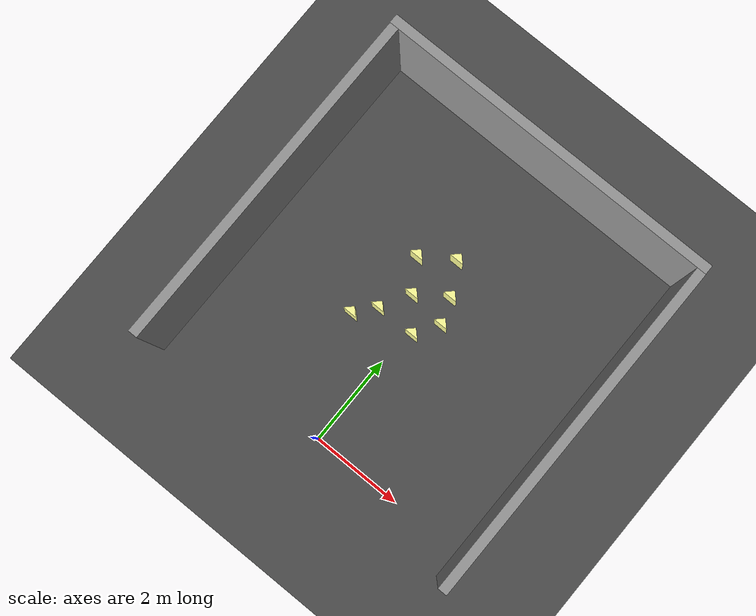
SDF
<sdf version="1.6">
 <world name="default">
  <light name="sun" type="directional">
   <pose>0 0 10 0 -0 0</pose>
   <diffuse>0.8 0.8 0.8 1</diffuse>
   <specular>0.2 0.2 0.2 1</specular>
   <attenuation>
    <range>1000</range>
    <constant>0.9</constant>
    <linear>0.01</linear>
    <quadratic>0.001</quadratic>
   </attenuation>
   <direction>-0.5 0.1 -0.9</direction>
  </light>
  <model name="ground_plane">
   <static>1</static>
   <link name="link">
    <collision name="collision">
     <geometry><plane><normal>0 0 1</normal><size>100 100</size></plane></geometry>
     <surface><friction><ode><mu>100</mu><mu2>50</mu2></ode></friction></surface>
    </collision>
    <visual name="visual">
     <cast_shadows>0</cast_shadows>
     <geometry><plane><normal>0 0 1</normal><size>100 100</size></plane></geometry>
     <material>
      <script><uri>file://media/materials/scripts/gazebo.material</uri><name>Gazebo/Grey</name></script>
     </material>
    </visual>
   </link>
  </model>
  <gravity>0 0 -9.8</gravity>
  <magnetic_field>6e-06 2.3e-05 -4.2e-05</magnetic_field>
  <atmosphere type="adiabatic"/>
  <physics name="default_physics" default="0" type="ode">
   <max_step_size>0.001</max_step_size>
   <real_time_factor>1</real_time_factor>
   <real_time_update_rate>1000</real_time_update_rate>
  </physics>
  <scene><ambient>0.4 0.4 0.4 1</ambient><background>0.7 0.7 0.7 1</background><shadows>1</shadows></scene>
  <audio><device>default</device></audio>
  <spherical_coordinates>
   <surface_model>EARTH_WGS84</surface_model>
   <latitude_deg>0</latitude_deg>
   <longitude_deg>0</longitude_deg>
   <elevation>0</elevation>
   <heading_deg>0</heading_deg>
  </spherical_coordinates>
  <model name="asphalt_plane">
   <static>1</static>
   <link name="link">
    <collision name="collision"><geometry><box><size>127.482 123.52 0.1</size></box></geometry></collision>
    <visual name="visual">
     <cast_shadows>0</cast_shadows>
     <geometry><box><size>127.482 123.52 0.1</size></box></geometry>
     <material>
      <script>
       <uri>model://asphalt_plane/materials/scripts</uri>
       <uri>model://asphalt_plane/materials/textures</uri>
       <name>vrc/asphalt</name>
      </script>
     </material>
    </visual>
   </link>
   <pose>-0.028318 3.39553 -0.044517 0 -0 0</pose>
  </model>
  <model name="grey_wall">
   <static>1</static>
   <link name="link">
    <pose>0 0 1.4 0 -0 0</pose>
    <collision name="collision"><geometry><box><size>7.5 0.2 2.8</size></box></geometry></collision>
    <visual name="visual">
     <cast_shadows>0</cast_shadows>
     <geometry><box><size>7.5 0.2 2.8</size></box></geometry>
     <material>
      <script>
       <uri>model://grey_wall/materials/scripts</uri>
       <uri>model://grey_wall/materials/textures</uri>
       <name>vrc/grey_wall</name>
      </script>
     </material>
    </visual>
   </link>
   <pose>0 7 0 0 -0 0</pose>
  </model>
  <model name="grey_wall_0">
   <static>1</static>
   <link name="link">
    <pose>0 0 1.4 0 -0 0</pose>
    <collision name="collision"><geometry><box><size>7.5 0.2 2.8</size></box></geometry></collision>
    <visual name="visual">
     <cast_shadows>0</cast_shadows>
     <geometry><box><size>7.5 0.2 2.8</size></box></geometry>
     <material>
      <script>
       <uri>model://grey_wall/materials/scripts</uri>
       <uri>model://grey_wall/materials/textures</uri>
       <name>vrc/grey_wall</name>
      </script>
     </material>
    </visual>
   </link>
   <pose>-3.65 3.15 0 0 -0 1.56904</pose>
  </model>
  <model name="grey_wall_0_clone">
   <static>1</static>
   <link name="link">
    <pose>0 0 1.4 0 -0 0</pose>
    <collision name="collision"><geometry><box><size>7.5 0.2 2.8</size></box></geometry></collision>
    <visual name="visual">
     <cast_shadows>0</cast_shadows>
     <geometry><box><size>7.5 0.2 2.8</size></box></geometry>
     <material>
      <script>
       <uri>model://grey_wall/materials/scripts</uri>
       <uri>model://grey_wall/materials/textures</uri>
       <name>vrc/grey_wall</name>
      </script>
     </material>
    </visual>
   </link>
   <pose>3.65 3.15 0 0 -0 1.56904</pose>
  </model>
  <light name="user_point_light_0" type="point">
   <pose>-0.123817 1.9421 1 0 -0 0</pose>
   <diffuse>0.5 0.5 0.5 1</diffuse>
   <specular>0.1 0.1 0.1 1</specular>
   <attenuation>
    <range>20</range>
    <constant>0.5</constant>
    <linear>0.01</linear>
    <quadratic>0.001</quadratic>
   </attenuation>
   <cast_shadows>0</cast_shadows>
   <direction>0 0 -1</direction>
  </light>
  <model name="testing_obstacle">
   <link name="link_0">
    <inertial>
     <mass>2</mass>
     <inertia><ixx>0</ixx><ixy>0</ixy><ixz>0</ixz><iyy>0</iyy><iyz>0</iyz><izz>0</izz></inertia>
     <pose>0 0 0 0 -0 0.2</pose>
    </inertial>
    <visual name="visual">
     <geometry><mesh><uri>/home/markus/simulated_obstacle.stl</uri><scale>1 1 1</scale></mesh></geometry>
     <material>
      <lighting>1</lighting>
      <script><uri>file://media/materials/scripts/gazebo.material</uri><name>Gazebo/Grey</name></script>
      <ambient>0.4 1 0.6 1</ambient>
      <diffuse>1 1 0.6 1</diffuse>
      <specular>0.01 0.4 0 1</specular>
      <emissive>0.2 0.5 0 1</emissive>
      <shader type="normal_map_tangent_space"><normal_map>__default__</normal_map></shader>
     </material>
    </visual>
    <collision name="collision">
     <geometry><mesh><uri>/home/markus/simulated_obstacle.stl</uri><scale>1 1 1</scale></mesh></geometry>
     <surface>
      <friction>
       <ode><mu>1</mu><mu2>1</mu2><fdir1>0 0 0</fdir1><slip1>0</slip1><slip2>0</slip2></ode>
       <torsional>
        <coefficient>1</coefficient>
        <patch_radius>0</patch_radius>
        <surface_radius>0</surface_radius>
        <use_patch_radius>1</use_patch_radius>
        <ode><slip>0</slip></ode>
       </torsional>
      </friction>
      <bounce><restitution_coefficient>0</restitution_coefficient><threshold>1e+06</threshold></bounce>
      <contact>
       <collide_without_contact>0</collide_without_contact>
       <collide_without_contact_bitmask>1</collide_without_contact_bitmask>
       <collide_bitmask>1</collide_bitmask>
       <ode>
        <soft_cfm>0</soft_cfm>
        <soft_erp>0.2</soft_erp>
        <kp>1e+13</kp>
        <kd>1</kd>
        <max_vel>0.01</max_vel>
        <min_depth>0</min_depth>
       </ode>
       <bullet>
        <split_impulse>1</split_impulse>
        <split_impulse_penetration_threshold>-0.01</split_impulse_penetration_threshold>
        <soft_cfm>0</soft_cfm>
        <soft_erp>0.2</soft_erp>
        <kp>1e+13</kp>
        <kd>1</kd>
       </bullet>
      </contact>
     </surface>
    </collision>
   </link>
   <static>0</static>
   <pose>-1.22634 2.31679 0.005342 -0.036429 -0.001223 0.775937</pose>
  </model>
  <model name="testing_obstacle_clone">
   <link name="link_0">
    <inertial>
     <mass>2</mass>
     <inertia><ixx>0</ixx><ixy>0</ixy><ixz>0</ixz><iyy>0</iyy><iyz>0</iyz><izz>0</izz></inertia>
     <pose>0 0 0 0 -0 0.2</pose>
    </inertial>
    <visual name="visual">
     <geometry><mesh><uri>/home/markus/simulated_obstacle.stl</uri><scale>1 1 1</scale></mesh></geometry>
     <material>
      <lighting>1</lighting>
      <script><uri>file://media/materials/scripts/gazebo.material</uri><name>Gazebo/Grey</name></script>
      <ambient>0.4 1 0.6 1</ambient>
      <diffuse>1 1 0.6 1</diffuse>
      <specular>0.01 0.4 0 1</specular>
      <emissive>0.2 0.5 0 1</emissive>
      <shader type="normal_map_tangent_space"><normal_map>__default__</normal_map></shader>
     </material>
    </visual>
    <collision name="collision">
     <geometry><mesh><uri>/home/markus/simulated_obstacle.stl</uri><scale>1 1 1</scale></mesh></geometry>
     <surface>
      <friction>
       <ode><mu>1</mu><mu2>1</mu2><fdir1>0 0 0</fdir1><slip1>0</slip1><slip2>0</slip2></ode>
       <torsional>
        <coefficient>1</coefficient>
        <patch_radius>0</patch_radius>
        <surface_radius>0</surface_radius>
        <use_patch_radius>1</use_patch_radius>
        <ode><slip>0</slip></ode>
       </torsional>
      </friction>
      <bounce><restitution_coefficient>0</restitution_coefficient><threshold>1e+06</threshold></bounce>
      <contact>
       <collide_without_contact>0</collide_without_contact>
       <collide_without_contact_bitmask>1</collide_without_contact_bitmask>
       <collide_bitmask>1</collide_bitmask>
       <ode>
        <soft_cfm>0</soft_cfm>
        <soft_erp>0.2</soft_erp>
        <kp>1e+13</kp>
        <kd>1</kd>
        <max_vel>0.01</max_vel>
        <min_depth>0</min_depth>
       </ode>
       <bullet>
        <split_impulse>1</split_impulse>
        <split_impulse_penetration_threshold>-0.01</split_impulse_penetration_threshold>
        <soft_cfm>0</soft_cfm>
        <soft_erp>0.2</soft_erp>
        <kp>1e+13</kp>
        <kd>1</kd>
       </bullet>
      </contact>
     </surface>
    </collision>
   </link>
   <static>0</static>
   <pose>-0.869383 2.74905 0.005343 -0.035474 -0.001006 0.775948</pose>
  </model>
  <model name="testing_obstacle_clone_0">
   <link name="link_0">
    <inertial>
     <mass>2</mass>
     <inertia><ixx>0</ixx><ixy>0</ixy><ixz>0</ixz><iyy>0</iyy><iyz>0</iyz><izz>0</izz></inertia>
     <pose>0 0 0 0 -0 0.2</pose>
    </inertial>
    <visual name="visual">
     <geometry><mesh><uri>/home/markus/simulated_obstacle.stl</uri><scale>1 1 1</scale></mesh></geometry>
     <material>
      <lighting>1</lighting>
      <script><uri>file://media/materials/scripts/gazebo.material</uri><name>Gazebo/Grey</name></script>
      <ambient>0.4 1 0.6 1</ambient>
      <diffuse>1 1 0.6 1</diffuse>
      <specular>0.01 0.4 0 1</specular>
      <emissive>0.2 0.5 0 1</emissive>
      <shader type="normal_map_tangent_space"><normal_map>__default__</normal_map></shader>
     </material>
    </visual>
    <collision name="collision">
     <geometry><mesh><uri>/home/markus/simulated_obstacle.stl</uri><scale>1 1 1</scale></mesh></geometry>
     <surface>
      <friction>
       <ode><mu>1</mu><mu2>1</mu2><fdir1>0 0 0</fdir1><slip1>0</slip1><slip2>0</slip2></ode>
       <torsional>
        <coefficient>1</coefficient>
        <patch_radius>0</patch_radius>
        <surface_radius>0</surface_radius>
        <use_patch_radius>1</use_patch_radius>
        <ode><slip>0</slip></ode>
       </torsional>
      </friction>
      <bounce><restitution_coefficient>0</restitution_coefficient><threshold>1e+06</threshold></bounce>
      <contact>
       <collide_without_contact>0</collide_without_contact>
       <collide_without_contact_bitmask>1</collide_without_contact_bitmask>
       <collide_bitmask>1</collide_bitmask>
       <ode>
        <soft_cfm>0</soft_cfm>
        <soft_erp>0.2</soft_erp>
        <kp>1e+13</kp>
        <kd>1</kd>
        <max_vel>0.01</max_vel>
        <min_depth>0</min_depth>
       </ode>
       <bullet>
        <split_impulse>1</split_impulse>
        <split_impulse_penetration_threshold>-0.01</split_impulse_penetration_threshold>
        <soft_cfm>0</soft_cfm>
        <soft_erp>0.2</soft_erp>
        <kp>1e+13</kp>
        <kd>1</kd>
       </bullet>
      </contact>
     </surface>
    </collision>
   </link>
   <static>0</static>
   <pose>-0.009933 2.75572 0.005333 -0.036232 -0.000997 0.775937</pose>
  </model>
  <model name="testing_obstacle_clone_1">
   <link name="link_0">
    <inertial>
     <mass>2</mass>
     <inertia><ixx>0</ixx><ixy>0</ixy><ixz>0</ixz><iyy>0</iyy><iyz>0</iyz><izz>0</izz></inertia>
     <pose>0 0 0 0 -0 0.2</pose>
    </inertial>
    <visual name="visual">
     <geometry><mesh><uri>/home/markus/simulated_obstacle.stl</uri><scale>1 1 1</scale></mesh></geometry>
     <material>
      <lighting>1</lighting>
      <script><uri>file://media/materials/scripts/gazebo.material</uri><name>Gazebo/Grey</name></script>
      <ambient>0.4 1 0.6 1</ambient>
      <diffuse>1 1 0.6 1</diffuse>
      <specular>0.01 0.4 0 1</specular>
      <emissive>0.2 0.5 0 1</emissive>
      <shader type="normal_map_tangent_space"><normal_map>__default__</normal_map></shader>
     </material>
    </visual>
    <collision name="collision">
     <geometry><mesh><uri>/home/markus/simulated_obstacle.stl</uri><scale>1 1 1</scale></mesh></geometry>
     <surface>
      <friction>
       <ode><mu>1</mu><mu2>1</mu2><fdir1>0 0 0</fdir1><slip1>0</slip1><slip2>0</slip2></ode>
       <torsional>
        <coefficient>1</coefficient>
        <patch_radius>0</patch_radius>
        <surface_radius>0</surface_radius>
        <use_patch_radius>1</use_patch_radius>
        <ode><slip>0</slip></ode>
       </torsional>
      </friction>
      <bounce><restitution_coefficient>0</restitution_coefficient><threshold>1e+06</threshold></bounce>
      <contact>
       <collide_without_contact>0</collide_without_contact>
       <collide_without_contact_bitmask>1</collide_without_contact_bitmask>
       <collide_bitmask>1</collide_bitmask>
       <ode>
        <soft_cfm>0</soft_cfm>
        <soft_erp>0.2</soft_erp>
        <kp>1e+13</kp>
        <kd>1</kd>
        <max_vel>0.01</max_vel>
        <min_depth>0</min_depth>
       </ode>
       <bullet>
        <split_impulse>1</split_impulse>
        <split_impulse_penetration_threshold>-0.01</split_impulse_penetration_threshold>
        <soft_cfm>0</soft_cfm>
        <soft_erp>0.2</soft_erp>
        <kp>1e+13</kp>
        <kd>1</kd>
       </bullet>
      </contact>
     </surface>
    </collision>
   </link>
   <static>0</static>
   <pose>-0.510239 3.37884 0.005342 -0.03656 -0.000994 0.775936</pose>
  </model>
  <model name="testing_obstacle_clone_2">
   <link name="link_0">
    <inertial>
     <mass>2</mass>
     <inertia><ixx>0</ixx><ixy>0</ixy><ixz>0</ixz><iyy>0</iyy><iyz>0</iyz><izz>0</izz></inertia>
     <pose>0 0 0 0 -0 0.2</pose>
    </inertial>
    <visual name="visual">
     <geometry><mesh><uri>/home/markus/simulated_obstacle.stl</uri><scale>1 1 1</scale></mesh></geometry>
     <material>
      <lighting>1</lighting>
      <script><uri>file://media/materials/scripts/gazebo.material</uri><name>Gazebo/Grey</name></script>
      <ambient>0.4 1 0.6 1</ambient>
      <diffuse>1 1 0.6 1</diffuse>
      <specular>0.01 0.4 0 1</specular>
      <emissive>0.2 0.5 0 1</emissive>
      <shader type="normal_map_tangent_space"><normal_map>__default__</normal_map></shader>
     </material>
    </visual>
    <collision name="collision">
     <geometry><mesh><uri>/home/markus/simulated_obstacle.stl</uri><scale>1 1 1</scale></mesh></geometry>
     <surface>
      <friction>
       <ode><mu>1</mu><mu2>1</mu2><fdir1>0 0 0</fdir1><slip1>0</slip1><slip2>0</slip2></ode>
       <torsional>
        <coefficient>1</coefficient>
        <patch_radius>0</patch_radius>
        <surface_radius>0</surface_radius>
        <use_patch_radius>1</use_patch_radius>
        <ode><slip>0</slip></ode>
       </torsional>
      </friction>
      <bounce><restitution_coefficient>0</restitution_coefficient><threshold>1e+06</threshold></bounce>
      <contact>
       <collide_without_contact>0</collide_without_contact>
       <collide_without_contact_bitmask>1</collide_without_contact_bitmask>
       <collide_bitmask>1</collide_bitmask>
       <ode>
        <soft_cfm>0</soft_cfm>
        <soft_erp>0.2</soft_erp>
        <kp>1e+13</kp>
        <kd>1</kd>
        <max_vel>0.01</max_vel>
        <min_depth>0</min_depth>
       </ode>
       <bullet>
        <split_impulse>1</split_impulse>
        <split_impulse_penetration_threshold>-0.01</split_impulse_penetration_threshold>
        <soft_cfm>0</soft_cfm>
        <soft_erp>0.2</soft_erp>
        <kp>1e+13</kp>
        <kd>1</kd>
       </bullet>
      </contact>
     </surface>
    </collision>
   </link>
   <static>0</static>
   <pose>0.318571 3.27374 0.005344 -0.036001 -0.003076 0.775943</pose>
  </model>
  <model name="testing_obstacle_clone_3">
   <link name="link_0">
    <inertial>
     <mass>2</mass>
     <inertia><ixx>0</ixx><ixy>0</ixy><ixz>0</ixz><iyy>0</iyy><iyz>0</iyz><izz>0</izz></inertia>
     <pose>0 0 0 0 -0 0.2</pose>
    </inertial>
    <visual name="visual">
     <geometry><mesh><uri>/home/markus/simulated_obstacle.stl</uri><scale>1 1 1</scale></mesh></geometry>
     <material>
      <lighting>1</lighting>
      <script><uri>file://media/materials/scripts/gazebo.material</uri><name>Gazebo/Grey</name></script>
      <ambient>0.4 1 0.6 1</ambient>
      <diffuse>1 1 0.6 1</diffuse>
      <specular>0.01 0.4 0 1</specular>
      <emissive>0.2 0.5 0 1</emissive>
      <shader type="normal_map_tangent_space"><normal_map>__default__</normal_map></shader>
     </material>
    </visual>
    <collision name="collision">
     <geometry><mesh><uri>/home/markus/simulated_obstacle.stl</uri><scale>1 1 1</scale></mesh></geometry>
     <surface>
      <friction>
       <ode><mu>1</mu><mu2>1</mu2><fdir1>0 0 0</fdir1><slip1>0</slip1><slip2>0</slip2></ode>
       <torsional>
        <coefficient>1</coefficient>
        <patch_radius>0</patch_radius>
        <surface_radius>0</surface_radius>
        <use_patch_radius>1</use_patch_radius>
        <ode><slip>0</slip></ode>
       </torsional>
      </friction>
      <bounce><restitution_coefficient>0</restitution_coefficient><threshold>1e+06</threshold></bounce>
      <contact>
       <collide_without_contact>0</collide_without_contact>
       <collide_without_contact_bitmask>1</collide_without_contact_bitmask>
       <collide_bitmask>1</collide_bitmask>
       <ode>
        <soft_cfm>0</soft_cfm>
        <soft_erp>0.2</soft_erp>
        <kp>1e+13</kp>
        <kd>1</kd>
        <max_vel>0.01</max_vel>
        <min_depth>0</min_depth>
       </ode>
       <bullet>
        <split_impulse>1</split_impulse>
        <split_impulse_penetration_threshold>-0.01</split_impulse_penetration_threshold>
        <soft_cfm>0</soft_cfm>
        <soft_erp>0.2</soft_erp>
        <kp>1e+13</kp>
        <kd>1</kd>
       </bullet>
      </contact>
     </surface>
    </collision>
   </link>
   <static>0</static>
   <pose>-0.928873 4.03737 0.005342 -0.036422 -0.000997 0.775936</pose>
  </model>
  <model name="testing_obstacle_clone_4">
   <link name="link_0">
    <inertial>
     <mass>2</mass>
     <inertia><ixx>0</ixx><ixy>0</ixy><ixz>0</ixz><iyy>0</iyy><iyz>0</iyz><izz>0</izz></inertia>
     <pose>0 0 0 0 -0 0.2</pose>
    </inertial>
    <visual name="visual">
     <geometry><mesh><uri>/home/markus/simulated_obstacle.stl</uri><scale>1 1 1</scale></mesh></geometry>
     <material>
      <lighting>1</lighting>
      <script><uri>file://media/materials/scripts/gazebo.material</uri><name>Gazebo/Grey</name></script>
      <ambient>0.4 1 0.6 1</ambient>
      <diffuse>1 1 0.6 1</diffuse>
      <specular>0.01 0.4 0 1</specular>
      <emissive>0.2 0.5 0 1</emissive>
      <shader type="normal_map_tangent_space"><normal_map>__default__</normal_map></shader>
     </material>
    </visual>
    <collision name="collision">
     <geometry><mesh><uri>/home/markus/simulated_obstacle.stl</uri><scale>1 1 1</scale></mesh></geometry>
     <surface>
      <friction>
       <ode><mu>1</mu><mu2>1</mu2><fdir1>0 0 0</fdir1><slip1>0</slip1><slip2>0</slip2></ode>
       <torsional>
        <coefficient>1</coefficient>
        <patch_radius>0</patch_radius>
        <surface_radius>0</surface_radius>
        <use_patch_radius>1</use_patch_radius>
        <ode><slip>0</slip></ode>
       </torsional>
      </friction>
      <bounce><restitution_coefficient>0</restitution_coefficient><threshold>1e+06</threshold></bounce>
      <contact>
       <collide_without_contact>0</collide_without_contact>
       <collide_without_contact_bitmask>1</collide_without_contact_bitmask>
       <collide_bitmask>1</collide_bitmask>
       <ode>
        <soft_cfm>0</soft_cfm>
        <soft_erp>0.2</soft_erp>
        <kp>1e+13</kp>
        <kd>1</kd>
        <max_vel>0.01</max_vel>
        <min_depth>0</min_depth>
       </ode>
       <bullet>
        <split_impulse>1</split_impulse>
        <split_impulse_penetration_threshold>-0.01</split_impulse_penetration_threshold>
        <soft_cfm>0</soft_cfm>
        <soft_erp>0.2</soft_erp>
        <kp>1e+13</kp>
        <kd>1</kd>
       </bullet>
      </contact>
     </surface>
    </collision>
   </link>
   <static>0</static>
   <pose>0.117094 3.81604 0.005342 -0.036494 -0.001136 0.775937</pose>
  </model>
  <model name="testing_obstacle_clone_5">
   <link name="link_0">
    <inertial>
     <mass>2</mass>
     <inertia><ixx>0</ixx><ixy>0</ixy><ixz>0</ixz><iyy>0</iyy><iyz>0</iyz><izz>0</izz></inertia>
     <pose>0 0 0 0 -0 0.2</pose>
    </inertial>
    <visual name="visual">
     <geometry><mesh><uri>/home/markus/simulated_obstacle.stl</uri><scale>1 1 1</scale></mesh></geometry>
     <material>
      <lighting>1</lighting>
      <script><uri>file://media/materials/scripts/gazebo.material</uri><name>Gazebo/Grey</name></script>
      <ambient>0.4 1 0.6 1</ambient>
      <diffuse>1 1 0.6 1</diffuse>
      <specular>0.01 0.4 0 1</specular>
      <emissive>0.2 0.5 0 1</emissive>
      <shader type="normal_map_tangent_space"><normal_map>__default__</normal_map></shader>
     </material>
    </visual>
    <collision name="collision">
     <geometry><mesh><uri>/home/markus/simulated_obstacle.stl</uri><scale>1 1 1</scale></mesh></geometry>
     <surface>
      <friction>
       <ode><mu>1</mu><mu2>1</mu2><fdir1>0 0 0</fdir1><slip1>0</slip1><slip2>0</slip2></ode>
       <torsional>
        <coefficient>1</coefficient>
        <patch_radius>0</patch_radius>
        <surface_radius>0</surface_radius>
        <use_patch_radius>1</use_patch_radius>
        <ode><slip>0</slip></ode>
       </torsional>
      </friction>
      <bounce><restitution_coefficient>0</restitution_coefficient><threshold>1e+06</threshold></bounce>
      <contact>
       <collide_without_contact>0</collide_without_contact>
       <collide_without_contact_bitmask>1</collide_without_contact_bitmask>
       <collide_bitmask>1</collide_bitmask>
       <ode>
        <soft_cfm>0</soft_cfm>
        <soft_erp>0.2</soft_erp>
        <kp>1e+13</kp>
        <kd>1</kd>
        <max_vel>0.01</max_vel>
        <min_depth>0</min_depth>
       </ode>
       <bullet>
        <split_impulse>1</split_impulse>
        <split_impulse_penetration_threshold>-0.01</split_impulse_penetration_threshold>
        <soft_cfm>0</soft_cfm>
        <soft_erp>0.2</soft_erp>
        <kp>1e+13</kp>
        <kd>1</kd>
       </bullet>
      </contact>
     </surface>
    </collision>
   </link>
   <static>0</static>
   <pose>-0.253216 4.48164 0.005342 -0.036611 -0.001046 0.775937</pose>
  </model>
 </world>
</sdf>
